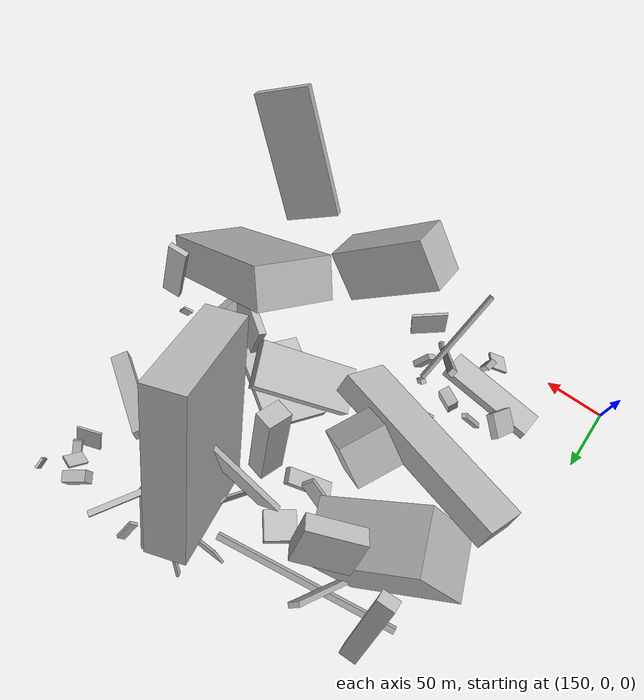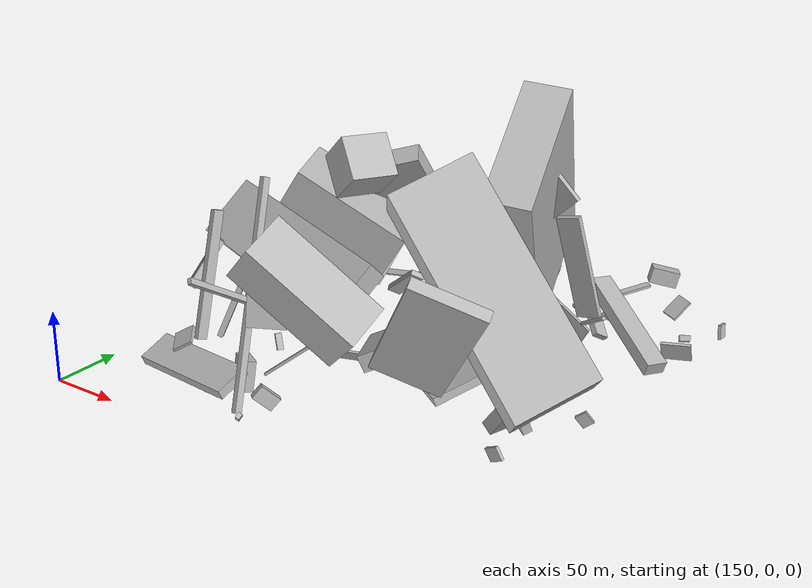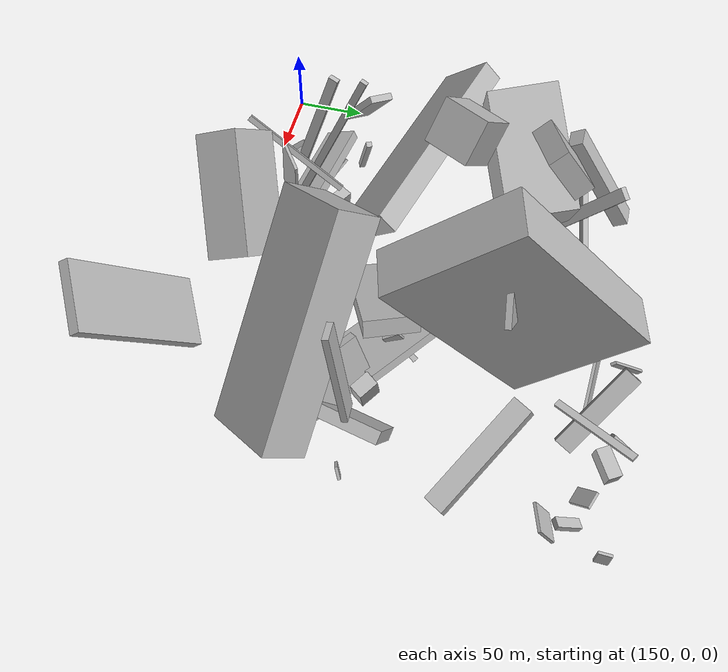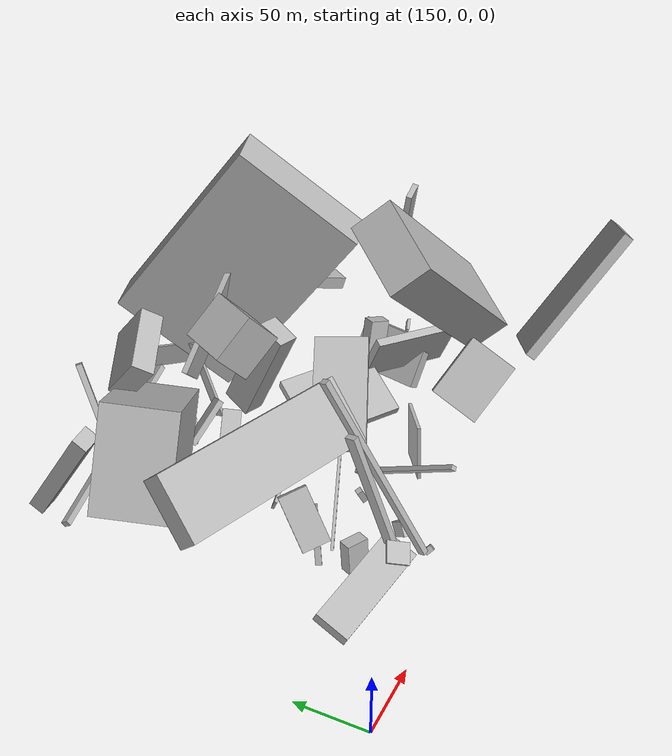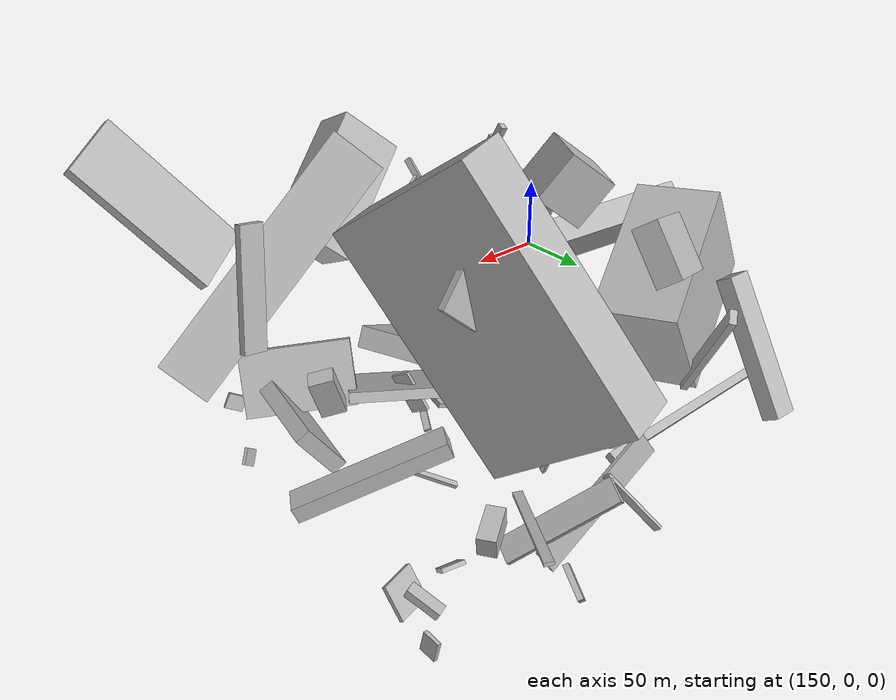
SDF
<sdf version="1.6">
 <world name="default">
  <model name="building_2">
   <static>0</static>
   <pose>418.1181025435239 64.45660811479848 94.56265195351862 1.0057984283466672 -0.8061323880651381 2.9371644983583636</pose>
   <link name="link">
    <gravity>0</gravity>
    <pose>0 0 28.0 0 0 0</pose>
    <collision name="collision"><geometry><box><size>150 31 56</size></box></geometry></collision>
    <visual name="visual">
     <cast_shadows>0</cast_shadows>
     <geometry><box><size>150 31 56</size></box></geometry>
     <material>
      <script>
       <uri>model://HANNAS_wall/materials/scripts</uri>
       <uri>model://HANNAS_wall/materials/textures</uri>
       <name>vrc/HANNAS_wall</name>
      </script>
     </material>
    </visual>
   </link>
  </model>
  <model name="building_3">
   <static>0</static>
   <pose>364.0808417446746 109.86434188710595 18.563318313049802 1.2260027277416212 -0.008536355651800357 2.5323561537483035</pose>
   <link name="link">
    <gravity>0</gravity>
    <pose>0 0 25.0 0 0 0</pose>
    <collision name="collision"><geometry><box><size>68 6 50</size></box></geometry></collision>
    <visual name="visual">
     <cast_shadows>0</cast_shadows>
     <geometry><box><size>68 6 50</size></box></geometry>
     <material>
      <script>
       <uri>model://HANNAS_wall/materials/scripts</uri>
       <uri>model://HANNAS_wall/materials/textures</uri>
       <name>vrc/HANNAS_wall</name>
      </script>
     </material>
    </visual>
   </link>
  </model>
  <model name="building_4">
   <static>0</static>
   <pose>403.8561029460927 214.39094951059397 107.00357033889529 1.4035721772929404 -0.9288006494117517 -1.1532855201001826</pose>
   <link name="link">
    <gravity>0</gravity>
    <pose>0 0 16.0 0 0 0</pose>
    <collision name="collision"><geometry><box><size>150 96 32</size></box></geometry></collision>
    <visual name="visual">
     <cast_shadows>0</cast_shadows>
     <geometry><box><size>150 96 32</size></box></geometry>
     <material>
      <script>
       <uri>model://HANNAS_wall/materials/scripts</uri>
       <uri>model://HANNAS_wall/materials/textures</uri>
       <name>vrc/HANNAS_wall</name>
      </script>
     </material>
    </visual>
   </link>
  </model>
  <model name="building_22">
   <static>0</static>
   <pose>244.9205272004873 172.23392726519427 66.22969239728597 1.4596909657707953 -0.5499924652152032 -2.722451857031103</pose>
   <link name="link">
    <gravity>0</gravity>
    <pose>0 0 24.5 0 0 0</pose>
    <collision name="collision"><geometry><box><size>89 70 49</size></box></geometry></collision>
    <visual name="visual">
     <cast_shadows>0</cast_shadows>
     <geometry><box><size>89 70 49</size></box></geometry>
     <material>
      <script>
       <uri>model://HANNAS_wall/materials/scripts</uri>
       <uri>model://HANNAS_wall/materials/textures</uri>
       <name>vrc/HANNAS_wall</name>
      </script>
     </material>
    </visual>
   </link>
  </model>
  <model name="building_26">
   <static>0</static>
   <pose>407.57354019639257 119.00521632947942 43.659427252811106 -1.870076257196878 -1.1870575320689802 -1.929313125726697</pose>
   <link name="link">
    <gravity>0</gravity>
    <pose>0 0 31.0 0 0 0</pose>
    <collision name="collision"><geometry><box><size>37 6 62</size></box></geometry></collision>
    <visual name="visual">
     <cast_shadows>0</cast_shadows>
     <geometry><box><size>37 6 62</size></box></geometry>
     <material>
      <script>
       <uri>model://HANNAS_wall/materials/scripts</uri>
       <uri>model://HANNAS_wall/materials/textures</uri>
       <name>vrc/HANNAS_wall</name>
      </script>
     </material>
    </visual>
   </link>
  </model>
  <model name="building_28">
   <static>0</static>
   <pose>404.5821279550789 271.5127762346329 29.86012934640669 2.3938090023363086 -0.5157253441062372 -1.8715965324238144</pose>
   <link name="link">
    <gravity>0</gravity>
    <pose>0 0 2.0 0 0 0</pose>
    <collision name="collision"><geometry><box><size>13 64 4</size></box></geometry></collision>
    <visual name="visual">
     <cast_shadows>0</cast_shadows>
     <geometry><box><size>13 64 4</size></box></geometry>
     <material>
      <script>
       <uri>model://HANNAS_wall/materials/scripts</uri>
       <uri>model://HANNAS_wall/materials/textures</uri>
       <name>vrc/HANNAS_wall</name>
      </script>
     </material>
    </visual>
   </link>
  </model>
  <model name="building_30">
   <static>0</static>
   <pose>323.225175625427 101.03876801558152 67.58350733971054 -1.398069640451177 -0.7681768784037347 1.1598286962647242</pose>
   <link name="link">
    <gravity>0</gravity>
    <pose>0 0 75.0 0 0 0</pose>
    <collision name="collision"><geometry><box><size>46 16 150</size></box></geometry></collision>
    <visual name="visual">
     <cast_shadows>0</cast_shadows>
     <geometry><box><size>46 16 150</size></box></geometry>
     <material>
      <script>
       <uri>model://HANNAS_wall/materials/scripts</uri>
       <uri>model://HANNAS_wall/materials/textures</uri>
       <name>vrc/HANNAS_wall</name>
      </script>
     </material>
    </visual>
   </link>
  </model>
  <model name="building_34">
   <static>0</static>
   <pose>261.55904670546846 63.35924424055855 23.710356961548815 -3.004043885474984 -0.029149631793515186 2.6386542376238724</pose>
   <link name="link">
    <gravity>0</gravity>
    <pose>0 0 11.0 0 0 0</pose>
    <collision name="collision"><geometry><box><size>15 9 22</size></box></geometry></collision>
    <visual name="visual">
     <cast_shadows>0</cast_shadows>
     <geometry><box><size>15 9 22</size></box></geometry>
     <material>
      <script>
       <uri>model://HANNAS_wall/materials/scripts</uri>
       <uri>model://HANNAS_wall/materials/textures</uri>
       <name>vrc/HANNAS_wall</name>
      </script>
     </material>
    </visual>
   </link>
  </model>
  <model name="building_36">
   <static>0</static>
   <pose>272.1161114277951 230.01621367510282 97.67326355855936 0.5861079996500301 -0.2797166010450879 0.37863836608252543</pose>
   <link name="link">
    <gravity>0</gravity>
    <pose>0 0 17.0 0 0 0</pose>
    <collision name="collision"><geometry><box><size>44 15 34</size></box></geometry></collision>
    <visual name="visual">
     <cast_shadows>0</cast_shadows>
     <geometry><box><size>44 15 34</size></box></geometry>
     <material>
      <script>
       <uri>model://HANNAS_wall/materials/scripts</uri>
       <uri>model://HANNAS_wall/materials/textures</uri>
       <name>vrc/HANNAS_wall</name>
      </script>
     </material>
    </visual>
   </link>
  </model>
  <model name="building_37">
   <static>0</static>
   <pose>356.9067098350816 186.494702843645 58.79823765795722 2.647999442468573 -1.1828707626302162 -1.3700291173630201</pose>
   <link name="link">
    <gravity>0</gravity>
    <pose>0 0 10.5 0 0 0</pose>
    <collision name="collision"><geometry><box><size>71 16 21</size></box></geometry></collision>
    <visual name="visual">
     <cast_shadows>0</cast_shadows>
     <geometry><box><size>71 16 21</size></box></geometry>
     <material>
      <script>
       <uri>model://HANNAS_wall/materials/scripts</uri>
       <uri>model://HANNAS_wall/materials/textures</uri>
       <name>vrc/HANNAS_wall</name>
      </script>
     </material>
    </visual>
   </link>
  </model>
  <model name="building_49">
   <static>0</static>
   <pose>250.476381653842 33.68549901590971 45.301711947150764 0.28921600647660817 0.11106529564768042 2.9240986375898834</pose>
   <link name="link">
    <gravity>0</gravity>
    <pose>0 0 41.5 0 0 0</pose>
    <collision name="collision"><geometry><box><size>4 7 83</size></box></geometry></collision>
    <visual name="visual">
     <cast_shadows>0</cast_shadows>
     <geometry><box><size>4 7 83</size></box></geometry>
     <material>
      <script>
       <uri>model://HANNAS_wall/materials/scripts</uri>
       <uri>model://HANNAS_wall/materials/textures</uri>
       <name>vrc/HANNAS_wall</name>
      </script>
     </material>
    </visual>
   </link>
  </model>
  <model name="building_55">
   <static>0</static>
   <pose>300.5109677903312 189.02782427712984 41.85188105733084 0.7468422142055865 -0.4814606211074269 -2.2740795503490476</pose>
   <link name="link">
    <gravity>0</gravity>
    <pose>0 0 2.0 0 0 0</pose>
    <collision name="collision"><geometry><box><size>10 34 4</size></box></geometry></collision>
    <visual name="visual">
     <cast_shadows>0</cast_shadows>
     <geometry><box><size>10 34 4</size></box></geometry>
     <material>
      <script>
       <uri>model://HANNAS_wall/materials/scripts</uri>
       <uri>model://HANNAS_wall/materials/textures</uri>
       <name>vrc/HANNAS_wall</name>
      </script>
     </material>
    </visual>
   </link>
  </model>
  <model name="building_56">
   <static>0</static>
   <pose>276.05834337052374 57.47279952764249 73.65135694069491 -0.5432349753458168 -1.1413832118697873 1.911942385262007</pose>
   <link name="link">
    <gravity>0</gravity>
    <pose>0 0 2.5 0 0 0</pose>
    <collision name="collision"><geometry><box><size>150 4 5</size></box></geometry></collision>
    <visual name="visual">
     <cast_shadows>0</cast_shadows>
     <geometry><box><size>150 4 5</size></box></geometry>
     <material>
      <script>
       <uri>model://HANNAS_wall/materials/scripts</uri>
       <uri>model://HANNAS_wall/materials/textures</uri>
       <name>vrc/HANNAS_wall</name>
      </script>
     </material>
    </visual>
   </link>
  </model>
  <model name="building_57">
   <static>0</static>
   <pose>322.88839613433913 212.52281284206057 11.674106666054005 1.3976113307197062 0.21680288784311463 -2.5254096811277864</pose>
   <link name="link">
    <gravity>0</gravity>
    <pose>0 0 12.5 0 0 0</pose>
    <collision name="collision"><geometry><box><size>26 7 25</size></box></geometry></collision>
    <visual name="visual">
     <cast_shadows>0</cast_shadows>
     <geometry><box><size>26 7 25</size></box></geometry>
     <material>
      <script>
       <uri>model://HANNAS_wall/materials/scripts</uri>
       <uri>model://HANNAS_wall/materials/textures</uri>
       <name>vrc/HANNAS_wall</name>
      </script>
     </material>
    </visual>
   </link>
  </model>
  <model name="building_59">
   <static>0</static>
   <pose>451.0306686751191 -3.445324895692803 115.67536266211363 2.5673562346572583 -0.8256312993374127 -0.642959854171915</pose>
   <link name="link">
    <gravity>0</gravity>
    <pose>0 0 3.5 0 0 0</pose>
    <collision name="collision"><geometry><box><size>100 43 7</size></box></geometry></collision>
    <visual name="visual">
     <cast_shadows>0</cast_shadows>
     <geometry><box><size>100 43 7</size></box></geometry>
     <material>
      <script>
       <uri>model://HANNAS_wall/materials/scripts</uri>
       <uri>model://HANNAS_wall/materials/textures</uri>
       <name>vrc/HANNAS_wall</name>
      </script>
     </material>
    </visual>
   </link>
  </model>
  <model name="building_61">
   <static>0</static>
   <pose>326.0074032556513 216.7575021618483 53.38060921887083 -0.835956785471656 0.13861588468721125 -1.551623280331134</pose>
   <link name="link">
    <gravity>0</gravity>
    <pose>0 0 60.0 0 0 0</pose>
    <collision name="collision"><geometry><box><size>4 25 120</size></box></geometry></collision>
    <visual name="visual">
     <cast_shadows>0</cast_shadows>
     <geometry><box><size>4 25 120</size></box></geometry>
     <material>
      <script>
       <uri>model://HANNAS_wall/materials/scripts</uri>
       <uri>model://HANNAS_wall/materials/textures</uri>
       <name>vrc/HANNAS_wall</name>
      </script>
     </material>
    </visual>
   </link>
  </model>
  <model name="building_62">
   <static>0</static>
   <pose>260.082762924574 242.21360140547722 54.44905119770806 -1.9219762422614193 -0.9697753091976056 1.0634385125470156</pose>
   <link name="link">
    <gravity>0</gravity>
    <pose>0 0 2.0 0 0 0</pose>
    <collision name="collision"><geometry><box><size>83 9 4</size></box></geometry></collision>
    <visual name="visual">
     <cast_shadows>0</cast_shadows>
     <geometry><box><size>83 9 4</size></box></geometry>
     <material>
      <script>
       <uri>model://HANNAS_wall/materials/scripts</uri>
       <uri>model://HANNAS_wall/materials/textures</uri>
       <name>vrc/HANNAS_wall</name>
      </script>
     </material>
    </visual>
   </link>
  </model>
  <model name="building_67">
   <static>0</static>
   <pose>447.1490404149378 117.54538135454116 20.09925021784553 0.9332979593090194 -0.05213215617519594 -1.7870863824838723</pose>
   <link name="link">
    <gravity>0</gravity>
    <pose>0 0 4.5 0 0 0</pose>
    <collision name="collision"><geometry><box><size>53 35 9</size></box></geometry></collision>
    <visual name="visual">
     <cast_shadows>0</cast_shadows>
     <geometry><box><size>53 35 9</size></box></geometry>
     <material>
      <script>
       <uri>model://HANNAS_wall/materials/scripts</uri>
       <uri>model://HANNAS_wall/materials/textures</uri>
       <name>vrc/HANNAS_wall</name>
      </script>
     </material>
    </visual>
   </link>
  </model>
  <model name="building_73">
   <static>0</static>
   <pose>477.1216768093607 122.54973507126299 117.9457586448044 1.7500136691367127 0.1706295868028579 -1.468198586337506</pose>
   <link name="link">
    <gravity>0</gravity>
    <pose>0 0 7.0 0 0 0</pose>
    <collision name="collision"><geometry><box><size>4 65 14</size></box></geometry></collision>
    <visual name="visual">
     <cast_shadows>0</cast_shadows>
     <geometry><box><size>4 65 14</size></box></geometry>
     <material>
      <script>
       <uri>model://HANNAS_wall/materials/scripts</uri>
       <uri>model://HANNAS_wall/materials/textures</uri>
       <name>vrc/HANNAS_wall</name>
      </script>
     </material>
    </visual>
   </link>
  </model>
  <model name="building_75">
   <static>0</static>
   <pose>274.6693419985804 245.17745441577702 22.295829469117688 0.5603903265473243 0.08965228849764416 -3.0242732265867995</pose>
   <link name="link">
    <gravity>0</gravity>
    <pose>0 0 2.0 0 0 0</pose>
    <collision name="collision"><geometry><box><size>150 5 4</size></box></geometry></collision>
    <visual name="visual">
     <cast_shadows>0</cast_shadows>
     <geometry><box><size>150 5 4</size></box></geometry>
     <material>
      <script>
       <uri>model://HANNAS_wall/materials/scripts</uri>
       <uri>model://HANNAS_wall/materials/textures</uri>
       <name>vrc/HANNAS_wall</name>
      </script>
     </material>
    </visual>
   </link>
  </model>
  <model name="building_86">
   <static>0</static>
   <pose>286.84997032534125 67.98352846017391 40.21412783444821 3.024302032379811 -1.1268158244854305 2.5783712227119393</pose>
   <link name="link">
    <gravity>0</gravity>
    <pose>0 0 2.0 0 0 0</pose>
    <collision name="collision"><geometry><box><size>11 4 4</size></box></geometry></collision>
    <visual name="visual">
     <cast_shadows>0</cast_shadows>
     <geometry><box><size>11 4 4</size></box></geometry>
     <material>
      <script>
       <uri>model://HANNAS_wall/materials/scripts</uri>
       <uri>model://HANNAS_wall/materials/textures</uri>
       <name>vrc/HANNAS_wall</name>
      </script>
     </material>
    </visual>
   </link>
  </model>
  <model name="building_92">
   <static>0</static>
   <pose>218.2944240376798 242.84602772322143 41.31008284252313 0.008133346505676034 -1.0307054446017316 -1.580177144983457</pose>
   <link name="link">
    <gravity>0</gravity>
    <pose>0 0 5.5 0 0 0</pose>
    <collision name="collision"><geometry><box><size>85 15 11</size></box></geometry></collision>
    <visual name="visual">
     <cast_shadows>0</cast_shadows>
     <geometry><box><size>85 15 11</size></box></geometry>
     <material>
      <script>
       <uri>model://HANNAS_wall/materials/scripts</uri>
       <uri>model://HANNAS_wall/materials/textures</uri>
       <name>vrc/HANNAS_wall</name>
      </script>
     </material>
    </visual>
   </link>
  </model>
  <model name="building_95">
   <static>0</static>
   <pose>213.88296046855135 65.339078772149 62.51630396485814 -0.31799041047845816 0.5861680529979599 0.6203271535672852</pose>
   <link name="link">
    <gravity>0</gravity>
    <pose>0 0 18.0 0 0 0</pose>
    <collision name="collision"><geometry><box><size>5 18 36</size></box></geometry></collision>
    <visual name="visual">
     <cast_shadows>0</cast_shadows>
     <geometry><box><size>5 18 36</size></box></geometry>
     <material>
      <script>
       <uri>model://HANNAS_wall/materials/scripts</uri>
       <uri>model://HANNAS_wall/materials/textures</uri>
       <name>vrc/HANNAS_wall</name>
      </script>
     </material>
    </visual>
   </link>
  </model>
  <model name="building_100">
   <static>0</static>
   <pose>230.65425467862158 72.45519883606755 27.57786931816294 0.4017615688648893 0.0593142554362466 2.058509630957529</pose>
   <link name="link">
    <gravity>0</gravity>
    <pose>0 0 19.5 0 0 0</pose>
    <collision name="collision"><geometry><box><size>4 4 39</size></box></geometry></collision>
    <visual name="visual">
     <cast_shadows>0</cast_shadows>
     <geometry><box><size>4 4 39</size></box></geometry>
     <material>
      <script>
       <uri>model://HANNAS_wall/materials/scripts</uri>
       <uri>model://HANNAS_wall/materials/textures</uri>
       <name>vrc/HANNAS_wall</name>
      </script>
     </material>
    </visual>
   </link>
  </model>
  <model name="building_104">
   <static>0</static>
   <pose>374.7887703159002 264.73648330415404 28.208678747982198 2.580549788326624 0.146209185974449 -1.6974254747726565</pose>
   <link name="link">
    <gravity>0</gravity>
    <pose>0 0 8.0 0 0 0</pose>
    <collision name="collision"><geometry><box><size>2 80 16</size></box></geometry></collision>
    <visual name="visual">
     <cast_shadows>0</cast_shadows>
     <geometry><box><size>2 80 16</size></box></geometry>
     <material>
      <script>
       <uri>model://HANNAS_wall/materials/scripts</uri>
       <uri>model://HANNAS_wall/materials/textures</uri>
       <name>vrc/HANNAS_wall</name>
      </script>
     </material>
    </visual>
   </link>
  </model>
  <model name="building_106">
   <static>0</static>
   <pose>289.8280359778448 89.972718891993 27.049720409094437 1.579616832089677 0.9185632354323127 0.35698478297060193</pose>
   <link name="link">
    <gravity>0</gravity>
    <pose>0 0 1.0 0 0 0</pose>
    <collision name="collision"><geometry><box><size>2 72 2</size></box></geometry></collision>
    <visual name="visual">
     <cast_shadows>0</cast_shadows>
     <geometry><box><size>2 72 2</size></box></geometry>
     <material>
      <script>
       <uri>model://HANNAS_wall/materials/scripts</uri>
       <uri>model://HANNAS_wall/materials/textures</uri>
       <name>vrc/HANNAS_wall</name>
      </script>
     </material>
    </visual>
   </link>
  </model>
  <model name="building_110">
   <static>0</static>
   <pose>413.60405587320264 290.3682700138941 8.853153413269837 0.9092147459898815 0.8273958223171641 -2.6698151261040204</pose>
   <link name="link">
    <gravity>0</gravity>
    <pose>0 0 1.5 0 0 0</pose>
    <collision name="collision"><geometry><box><size>7 18 3</size></box></geometry></collision>
    <visual name="visual">
     <cast_shadows>0</cast_shadows>
     <geometry><box><size>7 18 3</size></box></geometry>
     <material>
      <script>
       <uri>model://HANNAS_wall/materials/scripts</uri>
       <uri>model://HANNAS_wall/materials/textures</uri>
       <name>vrc/HANNAS_wall</name>
      </script>
     </material>
    </visual>
   </link>
  </model>
  <model name="building_112">
   <static>0</static>
   <pose>447.1946653282294 65.42043171356184 12.326869016557088 -0.3201653367893838 -1.0585697678483268 -3.0944324915605126</pose>
   <link name="link">
    <gravity>0</gravity>
    <pose>0 0 5.5 0 0 0</pose>
    <collision name="collision"><geometry><box><size>9 2 11</size></box></geometry></collision>
    <visual name="visual">
     <cast_shadows>0</cast_shadows>
     <geometry><box><size>9 2 11</size></box></geometry>
     <material>
      <script>
       <uri>model://HANNAS_wall/materials/scripts</uri>
       <uri>model://HANNAS_wall/materials/textures</uri>
       <name>vrc/HANNAS_wall</name>
      </script>
     </material>
    </visual>
   </link>
  </model>
  <model name="building_120">
   <static>0</static>
   <pose>481.09202717542223 249.58102824054515 15.451332156293526 -0.9925302986382694 -0.04349892902434185 0.3048485716798019</pose>
   <link name="link">
    <gravity>0</gravity>
    <pose>0 0 1.0 0 0 0</pose>
    <collision name="collision"><geometry><box><size>20 18 2</size></box></geometry></collision>
    <visual name="visual">
     <cast_shadows>0</cast_shadows>
     <geometry><box><size>20 18 2</size></box></geometry>
     <material>
      <script>
       <uri>model://HANNAS_wall/materials/scripts</uri>
       <uri>model://HANNAS_wall/materials/textures</uri>
       <name>vrc/HANNAS_wall</name>
      </script>
     </material>
    </visual>
   </link>
  </model>
  <model name="building_121">
   <static>0</static>
   <pose>348.582311288263 136.15686645702513 8.974284328471684 -0.2168688771877027 1.3011016031371707 -0.4437844545197751</pose>
   <link name="link">
    <gravity>0</gravity>
    <pose>0 0 7.0 0 0 0</pose>
    <collision name="collision"><geometry><box><size>3 14 14</size></box></geometry></collision>
    <visual name="visual">
     <cast_shadows>0</cast_shadows>
     <geometry><box><size>3 14 14</size></box></geometry>
     <material>
      <script>
       <uri>model://HANNAS_wall/materials/scripts</uri>
       <uri>model://HANNAS_wall/materials/textures</uri>
       <name>vrc/HANNAS_wall</name>
      </script>
     </material>
    </visual>
   </link>
  </model>
  <model name="building_133">
   <static>0</static>
   <pose>237.96158188177415 23.355411050893103 43.15177517244515 -1.0189314621291563 0.3405139554295601 -0.940038074881489</pose>
   <link name="link">
    <gravity>0</gravity>
    <pose>0 0 7.0 0 0 0</pose>
    <collision name="collision"><geometry><box><size>15 2 14</size></box></geometry></collision>
    <visual name="visual">
     <cast_shadows>0</cast_shadows>
     <geometry><box><size>15 2 14</size></box></geometry>
     <material>
      <script>
       <uri>model://HANNAS_wall/materials/scripts</uri>
       <uri>model://HANNAS_wall/materials/textures</uri>
       <name>vrc/HANNAS_wall</name>
      </script>
     </material>
    </visual>
   </link>
  </model>
  <model name="building_134">
   <static>0</static>
   <pose>314.35318238304166 181.46055903571244 18.444239773644522 2.4719565803867014 -0.13181919791759672 2.0173832704947143</pose>
   <link name="link">
    <gravity>0</gravity>
    <pose>0 0 3.0 0 0 0</pose>
    <collision name="collision"><geometry><box><size>13 42 6</size></box></geometry></collision>
    <visual name="visual">
     <cast_shadows>0</cast_shadows>
     <geometry><box><size>13 42 6</size></box></geometry>
     <material>
      <script>
       <uri>model://HANNAS_wall/materials/scripts</uri>
       <uri>model://HANNAS_wall/materials/textures</uri>
       <name>vrc/HANNAS_wall</name>
      </script>
     </material>
    </visual>
   </link>
  </model>
  <model name="building_135">
   <static>0</static>
   <pose>454.40143197261403 278.4791271784152 50.14925652105803 0.00803775905208576 0.2371428133268745 0.5766942248089305</pose>
   <link name="link">
    <gravity>0</gravity>
    <pose>0 0 5.5 0 0 0</pose>
    <collision name="collision"><geometry><box><size>19 9 11</size></box></geometry></collision>
    <visual name="visual">
     <cast_shadows>0</cast_shadows>
     <geometry><box><size>19 9 11</size></box></geometry>
     <material>
      <script>
       <uri>model://HANNAS_wall/materials/scripts</uri>
       <uri>model://HANNAS_wall/materials/textures</uri>
       <name>vrc/HANNAS_wall</name>
      </script>
     </material>
    </visual>
   </link>
  </model>
  <model name="building_146">
   <static>0</static>
   <pose>479.2039082491084 122.47223037424709 20.78502592028382 1.7570877395378672 -0.6368350375510804 0.3012264547653251</pose>
   <link name="link">
    <gravity>0</gravity>
    <pose>0 0 1.0 0 0 0</pose>
    <collision name="collision"><geometry><box><size>8 9 2</size></box></geometry></collision>
    <visual name="visual">
     <cast_shadows>0</cast_shadows>
     <geometry><box><size>8 9 2</size></box></geometry>
     <material>
      <script>
       <uri>model://HANNAS_wall/materials/scripts</uri>
       <uri>model://HANNAS_wall/materials/textures</uri>
       <name>vrc/HANNAS_wall</name>
      </script>
     </material>
    </visual>
   </link>
  </model>
  <model name="building_148">
   <static>0</static>
   <pose>278.0742966084688 39.436660505235224 80.90513541404212 2.5070053782699944 -0.5222408817465237 0.1702667318581814</pose>
   <link name="link">
    <gravity>0</gravity>
    <pose>0 0 2.0 0 0 0</pose>
    <collision name="collision"><geometry><box><size>3 80 4</size></box></geometry></collision>
    <visual name="visual">
     <cast_shadows>0</cast_shadows>
     <geometry><box><size>3 80 4</size></box></geometry>
     <material>
      <script>
       <uri>model://HANNAS_wall/materials/scripts</uri>
       <uri>model://HANNAS_wall/materials/textures</uri>
       <name>vrc/HANNAS_wall</name>
      </script>
     </material>
    </visual>
   </link>
  </model>
  <model name="building_150">
   <static>0</static>
   <pose>294.1115332642262 172.12026255683486 135.32386553382236 1.5192241176001968 0.8998169292866737 -0.5164920998109009</pose>
   <link name="link">
    <gravity>0</gravity>
    <pose>0 0 16.5 0 0 0</pose>
    <collision name="collision"><geometry><box><size>31 32 33</size></box></geometry></collision>
    <visual name="visual">
     <cast_shadows>0</cast_shadows>
     <geometry><box><size>31 32 33</size></box></geometry>
     <material>
      <script>
       <uri>model://HANNAS_wall/materials/scripts</uri>
       <uri>model://HANNAS_wall/materials/textures</uri>
       <name>vrc/HANNAS_wall</name>
      </script>
     </material>
    </visual>
   </link>
  </model>
  <model name="building_151">
   <static>0</static>
   <pose>291.41289326036207 21.925154391690498 8.01872171182388 2.386913549741348 -0.5088639776181726 -2.8698932512482282</pose>
   <link name="link">
    <gravity>0</gravity>
    <pose>0 0 3.0 0 0 0</pose>
    <collision name="collision"><geometry><box><size>3 4 6</size></box></geometry></collision>
    <visual name="visual">
     <cast_shadows>0</cast_shadows>
     <geometry><box><size>3 4 6</size></box></geometry>
     <material>
      <script>
       <uri>model://HANNAS_wall/materials/scripts</uri>
       <uri>model://HANNAS_wall/materials/textures</uri>
       <name>vrc/HANNAS_wall</name>
      </script>
     </material>
    </visual>
   </link>
  </model>
  <model name="building_153">
   <static>0</static>
   <pose>383.55905654196454 131.94612903076634 24.9550853584511 0.2942924624419013 1.0678825533104266 2.140518236021468</pose>
   <link name="link">
    <gravity>0</gravity>
    <pose>0 0 6.0 0 0 0</pose>
    <collision name="collision"><geometry><box><size>25 2 12</size></box></geometry></collision>
    <visual name="visual">
     <cast_shadows>0</cast_shadows>
     <geometry><box><size>25 2 12</size></box></geometry>
     <material>
      <script>
       <uri>model://HANNAS_wall/materials/scripts</uri>
       <uri>model://HANNAS_wall/materials/textures</uri>
       <name>vrc/HANNAS_wall</name>
      </script>
     </material>
    </visual>
   </link>
  </model>
  <model name="building_157">
   <static>0</static>
   <pose>300.8638011199498 40.45221302479238 63.41395434358043 0.07656119294501719 0.019401236816475594 2.1927167157829666</pose>
   <link name="link">
    <gravity>0</gravity>
    <pose>0 0 19.5 0 0 0</pose>
    <collision name="collision"><geometry><box><size>2 26 39</size></box></geometry></collision>
    <visual name="visual">
     <cast_shadows>0</cast_shadows>
     <geometry><box><size>2 26 39</size></box></geometry>
     <material>
      <script>
       <uri>model://HANNAS_wall/materials/scripts</uri>
       <uri>model://HANNAS_wall/materials/textures</uri>
       <name>vrc/HANNAS_wall</name>
      </script>
     </material>
    </visual>
   </link>
  </model>
  <model name="building_158">
   <static>0</static>
   <pose>328.7099115369804 106.27358461200646 28.29361405004267 -1.1274236364647996 -0.03023707845062469 -1.1730072623860481</pose>
   <link name="link">
    <gravity>0</gravity>
    <pose>0 0 40.0 0 0 0</pose>
    <collision name="collision"><geometry><box><size>37 12 80</size></box></geometry></collision>
    <visual name="visual">
     <cast_shadows>0</cast_shadows>
     <geometry><box><size>37 12 80</size></box></geometry>
     <material>
      <script>
       <uri>model://HANNAS_wall/materials/scripts</uri>
       <uri>model://HANNAS_wall/materials/textures</uri>
       <name>vrc/HANNAS_wall</name>
      </script>
     </material>
    </visual>
   </link>
  </model>
  <model name="building_161">
   <static>0</static>
   <pose>356.77305857331237 232.13276831414652 54.036747066376016 -2.7285716019769737 -0.002912268423189879 2.879869655872085</pose>
   <link name="link">
    <gravity>0</gravity>
    <pose>0 0 29.0 0 0 0</pose>
    <collision name="collision"><geometry><box><size>2 7 58</size></box></geometry></collision>
    <visual name="visual">
     <cast_shadows>0</cast_shadows>
     <geometry><box><size>2 7 58</size></box></geometry>
     <material>
      <script>
       <uri>model://HANNAS_wall/materials/scripts</uri>
       <uri>model://HANNAS_wall/materials/textures</uri>
       <name>vrc/HANNAS_wall</name>
      </script>
     </material>
    </visual>
   </link>
  </model>
  <model name="building_168">
   <static>0</static>
   <pose>374.5080667082296 140.37188540557764 9.79517984512753 0.45840495730219577 0.39513412606377163 1.0772036400261888</pose>
   <link name="link">
    <gravity>0</gravity>
    <pose>0 0 1.0 0 0 0</pose>
    <collision name="collision"><geometry><box><size>20 4 2</size></box></geometry></collision>
    <visual name="visual">
     <cast_shadows>0</cast_shadows>
     <geometry><box><size>20 4 2</size></box></geometry>
     <material>
      <script>
       <uri>model://HANNAS_wall/materials/scripts</uri>
       <uri>model://HANNAS_wall/materials/textures</uri>
       <name>vrc/HANNAS_wall</name>
      </script>
     </material>
    </visual>
   </link>
  </model>
  <model name="building_174">
   <static>0</static>
   <pose>496.3953620121835 287.2022617558664 21.36235733322846 1.4781660722600238 0.14601639849430026 1.5973265123953762</pose>
   <link name="link">
    <gravity>0</gravity>
    <pose>0 0 1.0 0 0 0</pose>
    <collision name="collision"><geometry><box><size>9 10 2</size></box></geometry></collision>
    <visual name="visual">
     <cast_shadows>0</cast_shadows>
     <geometry><box><size>9 10 2</size></box></geometry>
     <material>
      <script>
       <uri>model://HANNAS_wall/materials/scripts</uri>
       <uri>model://HANNAS_wall/materials/textures</uri>
       <name>vrc/HANNAS_wall</name>
      </script>
     </material>
    </visual>
   </link>
  </model>
  <model name="building_177">
   <static>0</static>
   <pose>419.0450713646293 272.3913007393793 35.11580462201425 1.6854533209923477 -0.11213082977330924 1.0195771376726357</pose>
   <link name="link">
    <gravity>0</gravity>
    <pose>0 0 2.5 0 0 0</pose>
    <collision name="collision"><geometry><box><size>61 2 5</size></box></geometry></collision>
    <visual name="visual">
     <cast_shadows>0</cast_shadows>
     <geometry><box><size>61 2 5</size></box></geometry>
     <material>
      <script>
       <uri>model://HANNAS_wall/materials/scripts</uri>
       <uri>model://HANNAS_wall/materials/textures</uri>
       <name>vrc/HANNAS_wall</name>
      </script>
     </material>
    </visual>
   </link>
  </model>
  <model name="building_181">
   <static>0</static>
   <pose>367.5987147562559 284.0427389199683 28.7761131877316 0.3627562984465011 0.8277994597597504 2.3114436965123155</pose>
   <link name="link">
    <gravity>0</gravity>
    <pose>0 0 2.0 0 0 0</pose>
    <collision name="collision"><geometry><box><size>40 2 4</size></box></geometry></collision>
    <visual name="visual">
     <cast_shadows>0</cast_shadows>
     <geometry><box><size>40 2 4</size></box></geometry>
     <material>
      <script>
       <uri>model://HANNAS_wall/materials/scripts</uri>
       <uri>model://HANNAS_wall/materials/textures</uri>
       <name>vrc/HANNAS_wall</name>
      </script>
     </material>
    </visual>
   </link>
  </model>
  <model name="building_184">
   <static>0</static>
   <pose>345.93323696118244 9.097409716935232 98.02383776059393 0.970612366297876 -0.6955637201145298 -2.7683607643273094</pose>
   <link name="link">
    <gravity>0</gravity>
    <pose>0 0 15.5 0 0 0</pose>
    <collision name="collision"><geometry><box><size>80 40 31</size></box></geometry></collision>
    <visual name="visual">
     <cast_shadows>0</cast_shadows>
     <geometry><box><size>80 40 31</size></box></geometry>
     <material>
      <script>
       <uri>model://HANNAS_wall/materials/scripts</uri>
       <uri>model://HANNAS_wall/materials/textures</uri>
       <name>vrc/HANNAS_wall</name>
      </script>
     </material>
    </visual>
   </link>
  </model>
  <model name="building_188">
   <static>0</static>
   <pose>229.8045573110694 49.20757332679375 7.873368346039472 -3.0163552693777995 1.098606935697774 1.3615150135238778</pose>
   <link name="link">
    <gravity>0</gravity>
    <pose>0 0 2.5 0 0 0</pose>
    <collision name="collision"><geometry><box><size>2 39 5</size></box></geometry></collision>
    <visual name="visual">
     <cast_shadows>0</cast_shadows>
     <geometry><box><size>2 39 5</size></box></geometry>
     <material>
      <script>
       <uri>model://HANNAS_wall/materials/scripts</uri>
       <uri>model://HANNAS_wall/materials/textures</uri>
       <name>vrc/HANNAS_wall</name>
      </script>
     </material>
    </visual>
   </link>
  </model>
  <model name="building_193">
   <static>0</static>
   <pose>462.3215971204854 206.29534684658935 44.23577535396165 0.39467911501617214 0.040410499161723755 1.01056535871198</pose>
   <link name="link">
    <gravity>0</gravity>
    <pose>0 0 4.5 0 0 0</pose>
    <collision name="collision"><geometry><box><size>14 80 9</size></box></geometry></collision>
    <visual name="visual">
     <cast_shadows>0</cast_shadows>
     <geometry><box><size>14 80 9</size></box></geometry>
     <material>
      <script>
       <uri>model://HANNAS_wall/materials/scripts</uri>
       <uri>model://HANNAS_wall/materials/textures</uri>
       <name>vrc/HANNAS_wall</name>
      </script>
     </material>
    </visual>
   </link>
  </model>
  <model name="building_194">
   <static>0</static>
   <pose>234.41789740282178 43.64753915956835 15.288412429996233 -0.018724111116211407 -0.4082442672361524 1.4507575241877768</pose>
   <link name="link">
    <gravity>0</gravity>
    <pose>0 0 3.5 0 0 0</pose>
    <collision name="collision"><geometry><box><size>24 80 7</size></box></geometry></collision>
    <visual name="visual">
     <cast_shadows>0</cast_shadows>
     <geometry><box><size>24 80 7</size></box></geometry>
     <material>
      <script>
       <uri>model://HANNAS_wall/materials/scripts</uri>
       <uri>model://HANNAS_wall/materials/textures</uri>
       <name>vrc/HANNAS_wall</name>
      </script>
     </material>
    </visual>
   </link>
  </model>
  <model name="building_199">
   <static>0</static>
   <pose>470.88506012245944 270.64364950871663 37.82927159510572 0.23951471065336122 -0.6860808186520613 1.0572896123505453</pose>
   <link name="link">
    <gravity>0</gravity>
    <pose>0 0 1.0 0 0 0</pose>
    <collision name="collision"><geometry><box><size>16 11 2</size></box></geometry></collision>
    <visual name="visual">
     <cast_shadows>0</cast_shadows>
     <geometry><box><size>16 11 2</size></box></geometry>
     <material>
      <script>
       <uri>model://HANNAS_wall/materials/scripts</uri>
       <uri>model://HANNAS_wall/materials/textures</uri>
       <name>vrc/HANNAS_wall</name>
      </script>
     </material>
    </visual>
   </link>
  </model>
  <model name="building_200">
   <static>0</static>
   <pose>433.7300083557457 215.20231043682696 39.18344064433188 -2.0631666294254773 0.9835736682280107 -1.0605282663296522</pose>
   <link name="link">
    <gravity>0</gravity>
    <pose>0 0 1.5 0 0 0</pose>
    <collision name="collision"><geometry><box><size>2 27 3</size></box></geometry></collision>
    <visual name="visual">
     <cast_shadows>0</cast_shadows>
     <geometry><box><size>2 27 3</size></box></geometry>
     <material>
      <script>
       <uri>model://HANNAS_wall/materials/scripts</uri>
       <uri>model://HANNAS_wall/materials/textures</uri>
       <name>vrc/HANNAS_wall</name>
      </script>
     </material>
    </visual>
   </link>
  </model>
  <model name="building_201">
   <static>0</static>
   <pose>292.28557952020054 46.399778995413755 12.066799493524604 1.5776578132798922 -0.8340086677006583 0.864126141561563</pose>
   <link name="link">
    <gravity>0</gravity>
    <pose>0 0 2.5 0 0 0</pose>
    <collision name="collision"><geometry><box><size>10 16 5</size></box></geometry></collision>
    <visual name="visual">
     <cast_shadows>0</cast_shadows>
     <geometry><box><size>10 16 5</size></box></geometry>
     <material>
      <script>
       <uri>model://HANNAS_wall/materials/scripts</uri>
       <uri>model://HANNAS_wall/materials/textures</uri>
       <name>vrc/HANNAS_wall</name>
      </script>
     </material>
    </visual>
   </link>
  </model>
  <model name="building_203">
   <static>0</static>
   <pose>483.64915815848195 265.43097434102697 20.293979429548376 1.6506951619186558 1.084511662860834 -1.0489579582002786</pose>
   <link name="link">
    <gravity>0</gravity>
    <pose>0 0 3.5 0 0 0</pose>
    <collision name="collision"><geometry><box><size>4 18 7</size></box></geometry></collision>
    <visual name="visual">
     <cast_shadows>0</cast_shadows>
     <geometry><box><size>4 18 7</size></box></geometry>
     <material>
      <script>
       <uri>model://HANNAS_wall/materials/scripts</uri>
       <uri>model://HANNAS_wall/materials/textures</uri>
       <name>vrc/HANNAS_wall</name>
      </script>
     </material>
    </visual>
   </link>
  </model>
  <model name="building_206">
   <static>0</static>
   <pose>282.0256461806686 130.7007804300897 6.469892794237038 -1.4574065837600116 -1.1915256465167514 -1.4676314252777964</pose>
   <link name="link">
    <gravity>0</gravity>
    <pose>0 0 14.0 0 0 0</pose>
    <collision name="collision"><geometry><box><size>7 2 28</size></box></geometry></collision>
    <visual name="visual">
     <cast_shadows>0</cast_shadows>
     <geometry><box><size>7 2 28</size></box></geometry>
     <material>
      <script>
       <uri>model://HANNAS_wall/materials/scripts</uri>
       <uri>model://HANNAS_wall/materials/textures</uri>
       <name>vrc/HANNAS_wall</name>
      </script>
     </material>
    </visual>
   </link>
  </model>
  <model name="building_210">
   <static>0</static>
   <pose>427.63030422330706 126.58588765075964 31.404621775290057 0.2667192651452 0.22904899816626795 0.9763505024507511</pose>
   <link name="link">
    <gravity>0</gravity>
    <pose>0 0 12.5 0 0 0</pose>
    <collision name="collision"><geometry><box><size>10 14 25</size></box></geometry></collision>
    <visual name="visual">
     <cast_shadows>0</cast_shadows>
     <geometry><box><size>10 14 25</size></box></geometry>
     <material>
      <script>
       <uri>model://HANNAS_wall/materials/scripts</uri>
       <uri>model://HANNAS_wall/materials/textures</uri>
       <name>vrc/HANNAS_wall</name>
      </script>
     </material>
    </visual>
   </link>
  </model>
 </world>
</sdf>
